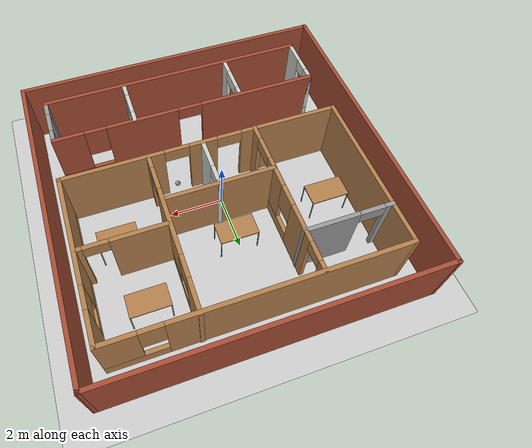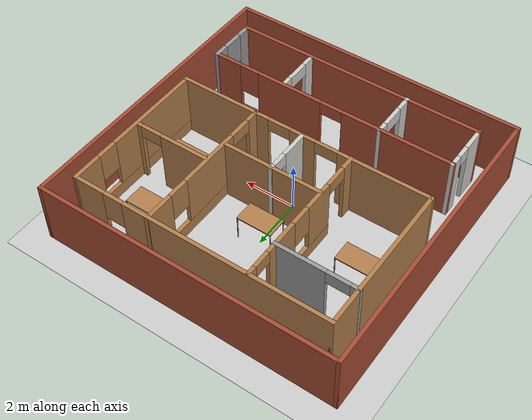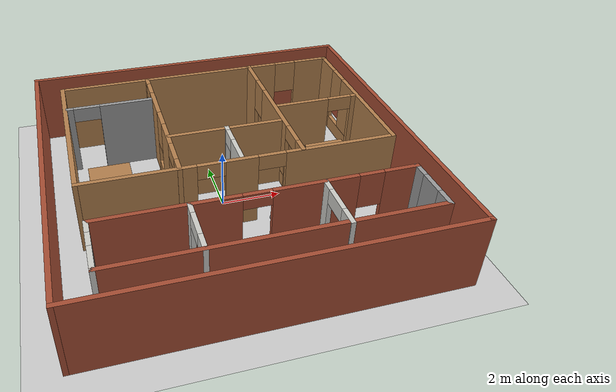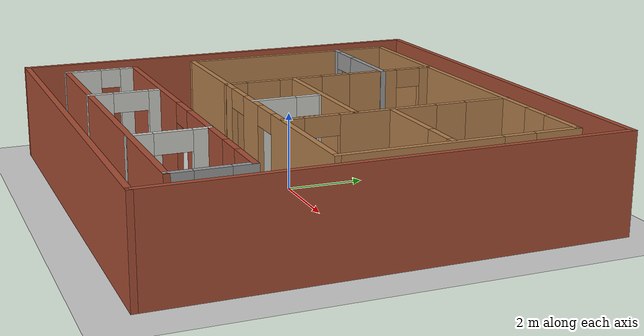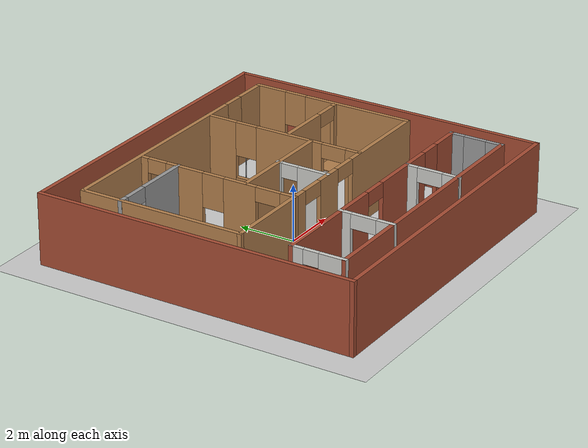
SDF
<sdf version="1.6">
 <world name="default">
  <plugin name="WelcomeMessage" filename="libWelcomeMessage.so"/>
  <light name="sun" type="directional">
   <pose>0 0 10 0 -0 0</pose>
   <diffuse>0.8 0.8 0.8 1</diffuse>
   <specular>0.1 0.1 0.1 1</specular>
   <attenuation>
    <range>1000</range>
    <constant>0.9</constant>
    <linear>0.01</linear>
    <quadratic>0.001</quadratic>
   </attenuation>
   <direction>-0.5 0.5 -1</direction>
  </light>
  <model name="ground_plane">
   <static>1</static>
   <link name="link">
    <collision name="collision">
     <geometry><plane><normal>0 0 1</normal><size>100 100</size></plane></geometry>
     <surface><friction><ode><mu>100</mu><mu2>50</mu2></ode></friction></surface>
    </collision>
    <visual name="visual">
     <cast_shadows>0</cast_shadows>
     <geometry><plane><normal>0 0 1</normal><size>100 100</size></plane></geometry>
     <material>
      <script><uri>file://media/materials/scripts/gazebo.material</uri><name>Gazebo/Grey</name></script>
     </material>
    </visual>
   </link>
  </model>
  <gravity>0 0 -9.8</gravity>
  <magnetic_field>6e-06 2.3e-05 -4.2e-05</magnetic_field>
  <atmosphere type="adiabatic"/>
  <physics name="default_physics" default="0" type="ode">
   <max_step_size>0.001</max_step_size>
   <real_time_factor>1</real_time_factor>
   <real_time_update_rate>1000</real_time_update_rate>
  </physics>
  <scene><ambient>0.4 0.4 0.4 1</ambient><background>0.7 0.7 0.7 1</background><shadows>1</shadows></scene>
  <spherical_coordinates>
   <surface_model>EARTH_WGS84</surface_model>
   <latitude_deg>0</latitude_deg>
   <longitude_deg>0</longitude_deg>
   <elevation>0</elevation>
   <heading_deg>0</heading_deg>
  </spherical_coordinates>
  <model name="Building">
   <pose>0.229511 0.12324 0 0 -0 0</pose>
   <link name="Wall_0">
    <collision name="Wall_0_Collision">
     <geometry><box><size>11.75 0.15 2.5</size></box></geometry>
     <pose>0 0 1.25 0 -0 0</pose>
    </collision>
    <visual name="Wall_0_Visual">
     <pose>0 0 1.25 0 -0 0</pose>
     <geometry><box><size>11.75 0.15 2.5</size></box></geometry>
     <material>
      <script><uri>file://media/materials/scripts/gazebo.material</uri><name>Gazebo/Bricks</name></script>
      <ambient>1 1 1 1</ambient>
     </material>
    </visual>
    <pose>0 5.675 0 0 -0 0</pose>
   </link>
   <link name="Wall_1">
    <collision name="Wall_1_Collision">
     <geometry><box><size>11.5 0.15 2.5</size></box></geometry>
     <pose>0 0 1.25 0 -0 0</pose>
    </collision>
    <visual name="Wall_1_Visual">
     <pose>0 0 1.25 0 -0 0</pose>
     <geometry><box><size>11.5 0.15 2.5</size></box></geometry>
     <material>
      <script><uri>file://media/materials/scripts/gazebo.material</uri><name>Gazebo/Bricks</name></script>
      <ambient>1 1 1 1</ambient>
     </material>
    </visual>
    <pose>5.8 0 0 0 0 -1.5708</pose>
   </link>
   <link name="Wall_10">
    <pose>-1.84004 1.73225 0 0 0 -1.5708</pose>
    <visual name="Wall_10_Visual_0">
     <pose>-2.79882 0 1.25 0 -0 0</pose>
     <geometry><box><size>0.402365 0.15 2.5</size></box></geometry>
     <material>
      <script><uri>file://media/materials/scripts/gazebo.material</uri><name>Gazebo/Wood</name></script>
      <ambient>1 1 1 1</ambient>
     </material>
    </visual>
    <collision name="Wall_10_Collision_0">
     <geometry><box><size>0.402365 0.15 2.5</size></box></geometry>
     <pose>-2.79882 0 1.25 0 -0 0</pose>
    </collision>
    <visual name="Wall_10_Visual_1">
     <pose>-1.20319 0 1.25 0 -0 0</pose>
     <geometry><box><size>1.40523 0.15 2.5</size></box></geometry>
     <material>
      <script><uri>file://media/materials/scripts/gazebo.material</uri><name>Gazebo/Wood</name></script>
      <ambient>1 1 1 1</ambient>
     </material>
    </visual>
    <collision name="Wall_10_Collision_1">
     <geometry><box><size>1.40523 0.15 2.5</size></box></geometry>
     <pose>-1.20319 0 1.25 0 -0 0</pose>
    </collision>
    <visual name="Wall_10_Visual_2">
     <pose>2.70402 0 1.25 0 -0 0</pose>
     <geometry><box><size>0.591953 0.15 2.5</size></box></geometry>
     <material>
      <script><uri>file://media/materials/scripts/gazebo.material</uri><name>Gazebo/Wood</name></script>
      <ambient>1 1 1 1</ambient>
     </material>
    </visual>
    <collision name="Wall_10_Collision_2">
     <geometry><box><size>0.591953 0.15 2.5</size></box></geometry>
     <pose>2.70402 0 1.25 0 -0 0</pose>
    </collision>
    <visual name="Wall_10_Visual_3">
     <pose>0.503735 0 0.25 0 -0 0</pose>
     <geometry><box><size>2.00862 0.15 0.5</size></box></geometry>
     <material>
      <script><uri>file://media/materials/scripts/gazebo.material</uri><name>Gazebo/Wood</name></script>
      <ambient>1 1 1 1</ambient>
     </material>
    </visual>
    <collision name="Wall_10_Collision_3">
     <geometry><box><size>2.00862 0.15 0.5</size></box></geometry>
     <pose>0.503735 0 0.25 0 -0 0</pose>
    </collision>
    <visual name="Wall_10_Visual_4">
     <pose>0.903735 0 1.5 0 -0 0</pose>
     <geometry><box><size>1.20862 0.15 2</size></box></geometry>
     <material>
      <script><uri>file://media/materials/scripts/gazebo.material</uri><name>Gazebo/Wood</name></script>
      <ambient>1 1 1 1</ambient>
     </material>
    </visual>
    <collision name="Wall_10_Collision_4">
     <geometry><box><size>1.20862 0.15 2</size></box></geometry>
     <pose>0.903735 0 1.5 0 -0 0</pose>
    </collision>
    <visual name="Wall_10_Visual_5">
     <pose>-0.100577 0 1.9 0 -0 0</pose>
     <geometry><box><size>0.8 0.15 1.2</size></box></geometry>
     <material>
      <script><uri>file://media/materials/scripts/gazebo.material</uri><name>Gazebo/Wood</name></script>
      <ambient>1 1 1 1</ambient>
     </material>
    </visual>
    <collision name="Wall_10_Collision_5">
     <geometry><box><size>0.8 0.15 1.2</size></box></geometry>
     <pose>-0.100577 0 1.9 0 -0 0</pose>
    </collision>
    <visual name="Wall_10_Visual_6">
     <pose>-2.25172 0 2.25 0 -0 0</pose>
     <geometry><box><size>0.691825 0.15 0.5</size></box></geometry>
     <material>
      <script><uri>file://media/materials/scripts/gazebo.material</uri><name>Gazebo/Wood</name></script>
      <ambient>1 1 1 1</ambient>
     </material>
    </visual>
    <collision name="Wall_10_Collision_6">
     <geometry><box><size>0.691825 0.15 0.5</size></box></geometry>
     <pose>-2.25172 0 2.25 0 -0 0</pose>
    </collision>
    <visual name="Wall_10_Visual_7">
     <pose>1.95805 0 2.25 0 -0 0</pose>
     <geometry><box><size>0.9 0.15 0.5</size></box></geometry>
     <material>
      <script><uri>file://media/materials/scripts/gazebo.material</uri><name>Gazebo/Wood</name></script>
      <ambient>1 1 1 1</ambient>
     </material>
    </visual>
    <collision name="Wall_10_Collision_7">
     <geometry><box><size>0.9 0.15 0.5</size></box></geometry>
     <pose>1.95805 0 2.25 0 -0 0</pose>
    </collision>
   </link>
   <link name="Wall_12">
    <pose>2.10026 1.76579 0 0 0 -1.5708</pose>
    <visual name="Wall_12_Visual_0">
     <pose>-2.39274 0 1.25 0 -0 0</pose>
     <geometry><box><size>1.21452 0.15 2.5</size></box></geometry>
     <material>
      <script><uri>file://media/materials/scripts/gazebo.material</uri><name>Gazebo/Wood</name></script>
      <ambient>1 1 1 1</ambient>
     </material>
    </visual>
    <collision name="Wall_12_Collision_0">
     <geometry><box><size>1.21452 0.15 2.5</size></box></geometry>
     <pose>-2.39274 0 1.25 0 -0 0</pose>
    </collision>
    <visual name="Wall_12_Visual_1">
     <pose>2.72079 0 1.25 0 -0 0</pose>
     <geometry><box><size>0.558413 0.15 2.5</size></box></geometry>
     <material>
      <script><uri>file://media/materials/scripts/gazebo.material</uri><name>Gazebo/Wood</name></script>
      <ambient>1 1 1 1</ambient>
     </material>
    </visual>
    <collision name="Wall_12_Collision_1">
     <geometry><box><size>0.558413 0.15 2.5</size></box></geometry>
     <pose>2.72079 0 1.25 0 -0 0</pose>
    </collision>
    <visual name="Wall_12_Visual_2">
     <pose>-0.121948 0 0.25 0 -0 0</pose>
     <geometry><box><size>3.32707 0.15 0.5</size></box></geometry>
     <material>
      <script><uri>file://media/materials/scripts/gazebo.material</uri><name>Gazebo/Wood</name></script>
      <ambient>1 1 1 1</ambient>
     </material>
    </visual>
    <collision name="Wall_12_Collision_2">
     <geometry><box><size>3.32707 0.15 0.5</size></box></geometry>
     <pose>-0.121948 0 0.25 0 -0 0</pose>
    </collision>
    <visual name="Wall_12_Visual_3">
     <pose>0.278052 0 1.5 0 -0 0</pose>
     <geometry><box><size>2.52707 0.15 2</size></box></geometry>
     <material>
      <script><uri>file://media/materials/scripts/gazebo.material</uri><name>Gazebo/Wood</name></script>
      <ambient>1 1 1 1</ambient>
     </material>
    </visual>
    <collision name="Wall_12_Collision_3">
     <geometry><box><size>2.52707 0.15 2</size></box></geometry>
     <pose>0.278052 0 1.5 0 -0 0</pose>
    </collision>
    <visual name="Wall_12_Visual_4">
     <pose>-1.38548 0 1.9 0 -0 0</pose>
     <geometry><box><size>0.8 0.15 1.2</size></box></geometry>
     <material>
      <script><uri>file://media/materials/scripts/gazebo.material</uri><name>Gazebo/Wood</name></script>
      <ambient>1 1 1 1</ambient>
     </material>
    </visual>
    <collision name="Wall_12_Collision_4">
     <geometry><box><size>0.8 0.15 1.2</size></box></geometry>
     <pose>-1.38548 0 1.9 0 -0 0</pose>
    </collision>
    <visual name="Wall_12_Visual_5">
     <pose>1.99159 0 2.25 0 -0 0</pose>
     <geometry><box><size>0.9 0.15 0.5</size></box></geometry>
     <material>
      <script><uri>file://media/materials/scripts/gazebo.material</uri><name>Gazebo/Wood</name></script>
      <ambient>1 1 1 1</ambient>
     </material>
    </visual>
    <collision name="Wall_12_Collision_5">
     <geometry><box><size>0.9 0.15 0.5</size></box></geometry>
     <pose>1.99159 0 2.25 0 -0 0</pose>
    </collision>
   </link>
   <link name="Wall_14">
    <pose>-3.37566 3.22084 0 0 -0 0</pose>
    <visual name="Wall_14_Visual_0">
     <pose>-1.44701 0 1.25 0 -0 0</pose>
     <geometry><box><size>0.355984 0.15 2.5</size></box></geometry>
     <material>
      <script><uri>file://media/materials/scripts/gazebo.material</uri><name>Gazebo/Grey</name></script>
      <ambient>1 1 1 1</ambient>
     </material>
    </visual>
    <collision name="Wall_14_Collision_0">
     <geometry><box><size>0.355984 0.15 2.5</size></box></geometry>
     <pose>-1.44701 0 1.25 0 -0 0</pose>
    </collision>
    <visual name="Wall_14_Visual_1">
     <pose>0.627992 0 1.25 0 -0 0</pose>
     <geometry><box><size>1.99402 0.15 2.5</size></box></geometry>
     <material>
      <script><uri>file://media/materials/scripts/gazebo.material</uri><name>Gazebo/Grey</name></script>
      <ambient>1 1 1 1</ambient>
     </material>
    </visual>
    <collision name="Wall_14_Collision_1">
     <geometry><box><size>1.99402 0.15 2.5</size></box></geometry>
     <pose>0.627992 0 1.25 0 -0 0</pose>
    </collision>
    <visual name="Wall_14_Visual_2">
     <pose>-0.819016 0 2.25 0 -0 0</pose>
     <geometry><box><size>0.9 0.15 0.5</size></box></geometry>
     <material>
      <script><uri>file://media/materials/scripts/gazebo.material</uri><name>Gazebo/Grey</name></script>
      <ambient>1 1 1 1</ambient>
     </material>
    </visual>
    <collision name="Wall_14_Collision_2">
     <geometry><box><size>0.9 0.15 0.5</size></box></geometry>
     <pose>-0.819016 0 2.25 0 -0 0</pose>
    </collision>
   </link>
   <link name="Wall_16">
    <pose>3.63166 1.57857 0 0 -0 0</pose>
    <visual name="Wall_16_Visual_0">
     <pose>-0.52805 0 1.25 0 -0 0</pose>
     <geometry><box><size>1.9439 0.15 2.5</size></box></geometry>
     <material>
      <script><uri>file://media/materials/scripts/gazebo.material</uri><name>Gazebo/Wood</name></script>
      <ambient>1 1 1 1</ambient>
     </material>
    </visual>
    <collision name="Wall_16_Collision_0">
     <geometry><box><size>1.9439 0.15 2.5</size></box></geometry>
     <pose>-0.52805 0 1.25 0 -0 0</pose>
    </collision>
    <visual name="Wall_16_Visual_1">
     <pose>1.39882 0 1.25 0 -0 0</pose>
     <geometry><box><size>0.202362 0.15 2.5</size></box></geometry>
     <material>
      <script><uri>file://media/materials/scripts/gazebo.material</uri><name>Gazebo/Wood</name></script>
      <ambient>1 1 1 1</ambient>
     </material>
    </visual>
    <collision name="Wall_16_Collision_1">
     <geometry><box><size>0.202362 0.15 2.5</size></box></geometry>
     <pose>1.39882 0 1.25 0 -0 0</pose>
    </collision>
    <visual name="Wall_16_Visual_2">
     <pose>0.870769 0 2.25 0 -0 0</pose>
     <geometry><box><size>0.853739 0.15 0.5</size></box></geometry>
     <material>
      <script><uri>file://media/materials/scripts/gazebo.material</uri><name>Gazebo/Wood</name></script>
      <ambient>1 1 1 1</ambient>
     </material>
    </visual>
    <collision name="Wall_16_Collision_2">
     <geometry><box><size>0.853739 0.15 0.5</size></box></geometry>
     <pose>0.870769 0 2.25 0 -0 0</pose>
    </collision>
   </link>
   <link name="Wall_18">
    <collision name="Wall_18_Collision">
     <geometry><box><size>4 0.15 2.5</size></box></geometry>
     <pose>0 0 1.25 0 -0 0</pose>
    </collision>
    <visual name="Wall_18_Visual">
     <pose>0 0 1.25 0 -0 0</pose>
     <geometry><box><size>4 0.15 2.5</size></box></geometry>
     <material>
      <script><uri>file://media/materials/scripts/gazebo.material</uri><name>Gazebo/Wood</name></script>
      <ambient>1 1 1 1</ambient>
     </material>
    </visual>
    <pose>0.11503 0.647562 0 0 -0 0</pose>
   </link>
   <link name="Wall_2">
    <collision name="Wall_2_Collision">
     <geometry><box><size>11.75 0.15 2.5</size></box></geometry>
     <pose>0 0 1.25 0 -0 0</pose>
    </collision>
    <visual name="Wall_2_Visual">
     <pose>0 0 1.25 0 -0 0</pose>
     <geometry><box><size>11.75 0.15 2.5</size></box></geometry>
     <material>
      <script><uri>file://media/materials/scripts/gazebo.material</uri><name>Gazebo/Bricks</name></script>
      <ambient>1 1 1 1</ambient>
     </material>
    </visual>
    <pose>0 -5.675 0 0 -0 3.14159</pose>
   </link>
   <link name="Wall_20">
    <pose>0.128375 -0.257777 0 0 0 -1.5708</pose>
    <visual name="Wall_20_Visual_0">
     <pose>-0.885558 0 1.25 0 -0 0</pose>
     <geometry><box><size>0.228885 0.15 2.5</size></box></geometry>
     <material>
      <script><uri>file://media/materials/scripts/gazebo.material</uri><name>Gazebo/CeilingTiled</name></script>
      <ambient>1 1 1 1</ambient>
     </material>
    </visual>
    <collision name="Wall_20_Collision_0">
     <geometry><box><size>0.228885 0.15 2.5</size></box></geometry>
     <pose>-0.885558 0 1.25 0 -0 0</pose>
    </collision>
    <visual name="Wall_20_Visual_1">
     <pose>0.414094 0 1.25 0 -0 0</pose>
     <geometry><box><size>1.17181 0.15 2.5</size></box></geometry>
     <material>
      <script><uri>file://media/materials/scripts/gazebo.material</uri><name>Gazebo/CeilingTiled</name></script>
      <ambient>1 1 1 1</ambient>
     </material>
    </visual>
    <collision name="Wall_20_Collision_1">
     <geometry><box><size>1.17181 0.15 2.5</size></box></geometry>
     <pose>0.414094 0 1.25 0 -0 0</pose>
    </collision>
    <visual name="Wall_20_Visual_2">
     <pose>-0.471464 0 2.25 0 -0 0</pose>
     <geometry><box><size>0.599302 0.15 0.5</size></box></geometry>
     <material>
      <script><uri>file://media/materials/scripts/gazebo.material</uri><name>Gazebo/CeilingTiled</name></script>
      <ambient>1 1 1 1</ambient>
     </material>
    </visual>
    <collision name="Wall_20_Collision_2">
     <geometry><box><size>0.599302 0.15 0.5</size></box></geometry>
     <pose>-0.471464 0 2.25 0 -0 0</pose>
    </collision>
   </link>
   <link name="Wall_22">
    <pose>0.162408 -2.91686 0 0 -0 0</pose>
    <visual name="Wall_22_Visual_0">
     <pose>-2.77553 0 1.25 0 -0 0</pose>
     <geometry><box><size>4.44895 0.15 2.5</size></box></geometry>
     <material>
      <script><uri>file://media/materials/scripts/gazebo.material</uri><name>Gazebo/Bricks</name></script>
      <ambient>1 1 1 1</ambient>
     </material>
    </visual>
    <collision name="Wall_22_Collision_0">
     <geometry><box><size>4.44895 0.15 2.5</size></box></geometry>
     <pose>-2.77553 0 1.25 0 -0 0</pose>
    </collision>
    <visual name="Wall_22_Visual_1">
     <pose>1.69344 0 1.25 0 -0 0</pose>
     <geometry><box><size>2.68898 0.15 2.5</size></box></geometry>
     <material>
      <script><uri>file://media/materials/scripts/gazebo.material</uri><name>Gazebo/Bricks</name></script>
      <ambient>1 1 1 1</ambient>
     </material>
    </visual>
    <collision name="Wall_22_Collision_1">
     <geometry><box><size>2.68898 0.15 2.5</size></box></geometry>
     <pose>1.69344 0 1.25 0 -0 0</pose>
    </collision>
    <visual name="Wall_22_Visual_2">
     <pose>4.01896 0 0.25 0 -0 0</pose>
     <geometry><box><size>1.96207 0.15 0.5</size></box></geometry>
     <material>
      <script><uri>file://media/materials/scripts/gazebo.material</uri><name>Gazebo/Bricks</name></script>
      <ambient>1 1 1 1</ambient>
     </material>
    </visual>
    <collision name="Wall_22_Collision_2">
     <geometry><box><size>1.96207 0.15 0.5</size></box></geometry>
     <pose>4.01896 0 0.25 0 -0 0</pose>
    </collision>
    <visual name="Wall_22_Visual_3">
     <pose>4.41896 0 1.5 0 -0 0</pose>
     <geometry><box><size>1.16207 0.15 2</size></box></geometry>
     <material>
      <script><uri>file://media/materials/scripts/gazebo.material</uri><name>Gazebo/Bricks</name></script>
      <ambient>1 1 1 1</ambient>
     </material>
    </visual>
    <collision name="Wall_22_Collision_3">
     <geometry><box><size>1.16207 0.15 2</size></box></geometry>
     <pose>4.41896 0 1.5 0 -0 0</pose>
    </collision>
    <visual name="Wall_22_Visual_4">
     <pose>3.43793 0 1.9 0 -0 0</pose>
     <geometry><box><size>0.8 0.15 1.2</size></box></geometry>
     <material>
      <script><uri>file://media/materials/scripts/gazebo.material</uri><name>Gazebo/Bricks</name></script>
      <ambient>1 1 1 1</ambient>
     </material>
    </visual>
    <collision name="Wall_22_Collision_4">
     <geometry><box><size>0.8 0.15 1.2</size></box></geometry>
     <pose>3.43793 0 1.9 0 -0 0</pose>
    </collision>
    <visual name="Wall_22_Visual_5">
     <pose>-0.101055 0 2.25 0 -0 0</pose>
     <geometry><box><size>0.9 0.15 0.5</size></box></geometry>
     <material>
      <script><uri>file://media/materials/scripts/gazebo.material</uri><name>Gazebo/Bricks</name></script>
      <ambient>1 1 1 1</ambient>
     </material>
    </visual>
    <collision name="Wall_22_Collision_5">
     <geometry><box><size>0.9 0.15 0.5</size></box></geometry>
     <pose>-0.101055 0 2.25 0 -0 0</pose>
    </collision>
   </link>
   <link name="Wall_23">
    <pose>5.08741 -3.84186 0 0 0 -1.5708</pose>
    <visual name="Wall_23_Visual_0">
     <pose>-0.715413 0 1.25 0 -0 0</pose>
     <geometry><box><size>0.569174 0.15 2.5</size></box></geometry>
     <material>
      <script><uri>file://media/materials/scripts/gazebo.material</uri><name>Gazebo/Grey</name></script>
      <ambient>1 1 1 1</ambient>
     </material>
    </visual>
    <collision name="Wall_23_Collision_0">
     <geometry><box><size>0.569174 0.15 2.5</size></box></geometry>
     <pose>-0.715413 0 1.25 0 -0 0</pose>
    </collision>
    <visual name="Wall_23_Visual_1">
     <pose>0.284587 0 0.25 0 -0 0</pose>
     <geometry><box><size>1.43083 0.15 0.5</size></box></geometry>
     <material>
      <script><uri>file://media/materials/scripts/gazebo.material</uri><name>Gazebo/Grey</name></script>
      <ambient>1 1 1 1</ambient>
     </material>
    </visual>
    <collision name="Wall_23_Collision_1">
     <geometry><box><size>1.43083 0.15 0.5</size></box></geometry>
     <pose>0.284587 0 0.25 0 -0 0</pose>
    </collision>
    <visual name="Wall_23_Visual_2">
     <pose>0.684587 0 1.5 0 -0 0</pose>
     <geometry><box><size>0.630826 0.15 2</size></box></geometry>
     <material>
      <script><uri>file://media/materials/scripts/gazebo.material</uri><name>Gazebo/Grey</name></script>
      <ambient>1 1 1 1</ambient>
     </material>
    </visual>
    <collision name="Wall_23_Collision_2">
     <geometry><box><size>0.630826 0.15 2</size></box></geometry>
     <pose>0.684587 0 1.5 0 -0 0</pose>
    </collision>
    <visual name="Wall_23_Visual_3">
     <pose>-0.030826 0 1.9 0 -0 0</pose>
     <geometry><box><size>0.8 0.15 1.2</size></box></geometry>
     <material>
      <script><uri>file://media/materials/scripts/gazebo.material</uri><name>Gazebo/Grey</name></script>
      <ambient>1 1 1 1</ambient>
     </material>
    </visual>
    <collision name="Wall_23_Collision_3">
     <geometry><box><size>0.8 0.15 1.2</size></box></geometry>
     <pose>-0.030826 0 1.9 0 -0 0</pose>
    </collision>
   </link>
   <link name="Wall_24">
    <collision name="Wall_24_Collision">
     <geometry><box><size>10 0.15 2.5</size></box></geometry>
     <pose>0 0 1.25 0 -0 0</pose>
    </collision>
    <visual name="Wall_24_Visual">
     <pose>0 0 1.25 0 -0 0</pose>
     <geometry><box><size>10 0.15 2.5</size></box></geometry>
     <material>
      <script><uri>file://media/materials/scripts/gazebo.material</uri><name>Gazebo/Bricks</name></script>
      <ambient>1 1 1 1</ambient>
     </material>
    </visual>
    <pose>0.162408 -4.76686 0 0 -0 3.14159</pose>
   </link>
   <link name="Wall_25">
    <pose>-4.76259 -3.84186 0 0 -0 1.5708</pose>
    <visual name="Wall_25_Visual_0">
     <pose>-0.51876 0 1.25 0 -0 0</pose>
     <geometry><box><size>0.962481 0.15 2.5</size></box></geometry>
     <material>
      <script><uri>file://media/materials/scripts/gazebo.material</uri><name>Gazebo/CeilingTiled</name></script>
      <ambient>1 1 1 1</ambient>
     </material>
    </visual>
    <collision name="Wall_25_Collision_0">
     <geometry><box><size>0.962481 0.15 2.5</size></box></geometry>
     <pose>-0.51876 0 1.25 0 -0 0</pose>
    </collision>
    <visual name="Wall_25_Visual_1">
     <pose>0.746196 0 1.25 0 -0 0</pose>
     <geometry><box><size>0.507609 0.15 2.5</size></box></geometry>
     <material>
      <script><uri>file://media/materials/scripts/gazebo.material</uri><name>Gazebo/CeilingTiled</name></script>
      <ambient>1 1 1 1</ambient>
     </material>
    </visual>
    <collision name="Wall_25_Collision_1">
     <geometry><box><size>0.507609 0.15 2.5</size></box></geometry>
     <pose>0.746196 0 1.25 0 -0 0</pose>
    </collision>
    <visual name="Wall_25_Visual_2">
     <pose>0.227436 0 2.25 0 -0 0</pose>
     <geometry><box><size>0.52991 0.15 0.5</size></box></geometry>
     <material>
      <script><uri>file://media/materials/scripts/gazebo.material</uri><name>Gazebo/CeilingTiled</name></script>
      <ambient>1 1 1 1</ambient>
     </material>
    </visual>
    <collision name="Wall_25_Collision_2">
     <geometry><box><size>0.52991 0.15 0.5</size></box></geometry>
     <pose>0.227436 0 2.25 0 -0 0</pose>
    </collision>
   </link>
   <link name="Wall_27">
    <pose>-1.91637 -3.84186 0 0 0 -1.5708</pose>
    <visual name="Wall_27_Visual_0">
     <pose>-0.775109 0 1.25 0 -0 0</pose>
     <geometry><box><size>0.449782 0.15 2.5</size></box></geometry>
     <material>
      <script><uri>file://media/materials/scripts/gazebo.material</uri><name>Gazebo/CeilingTiled</name></script>
      <ambient>1 1 1 1</ambient>
     </material>
    </visual>
    <collision name="Wall_27_Collision_0">
     <geometry><box><size>0.449782 0.15 2.5</size></box></geometry>
     <pose>-0.775109 0 1.25 0 -0 0</pose>
    </collision>
    <visual name="Wall_27_Visual_1">
     <pose>0.674891 0 1.25 0 -0 0</pose>
     <geometry><box><size>0.650218 0.15 2.5</size></box></geometry>
     <material>
      <script><uri>file://media/materials/scripts/gazebo.material</uri><name>Gazebo/CeilingTiled</name></script>
      <ambient>1 1 1 1</ambient>
     </material>
    </visual>
    <collision name="Wall_27_Collision_1">
     <geometry><box><size>0.650218 0.15 2.5</size></box></geometry>
     <pose>0.674891 0 1.25 0 -0 0</pose>
    </collision>
    <visual name="Wall_27_Visual_2">
     <pose>-0.100218 0 2.25 0 -0 0</pose>
     <geometry><box><size>0.9 0.15 0.5</size></box></geometry>
     <material>
      <script><uri>file://media/materials/scripts/gazebo.material</uri><name>Gazebo/CeilingTiled</name></script>
      <ambient>1 1 1 1</ambient>
     </material>
    </visual>
    <collision name="Wall_27_Collision_2">
     <geometry><box><size>0.9 0.15 0.5</size></box></geometry>
     <pose>-0.100218 0 2.25 0 -0 0</pose>
    </collision>
   </link>
   <link name="Wall_29">
    <pose>2.13033 -3.86152 0 0 0 -1.5708</pose>
    <visual name="Wall_29_Visual_0">
     <pose>-0.761809 0 1.25 0 -0 0</pose>
     <geometry><box><size>0.476383 0.15 2.5</size></box></geometry>
     <material>
      <script><uri>file://media/materials/scripts/gazebo.material</uri><name>Gazebo/CeilingTiled</name></script>
      <ambient>1 1 1 1</ambient>
     </material>
    </visual>
    <collision name="Wall_29_Collision_0">
     <geometry><box><size>0.476383 0.15 2.5</size></box></geometry>
     <pose>-0.761809 0 1.25 0 -0 0</pose>
    </collision>
    <visual name="Wall_29_Visual_1">
     <pose>0.688191 0 1.25 0 -0 0</pose>
     <geometry><box><size>0.623617 0.15 2.5</size></box></geometry>
     <material>
      <script><uri>file://media/materials/scripts/gazebo.material</uri><name>Gazebo/CeilingTiled</name></script>
      <ambient>1 1 1 1</ambient>
     </material>
    </visual>
    <collision name="Wall_29_Collision_1">
     <geometry><box><size>0.623617 0.15 2.5</size></box></geometry>
     <pose>0.688191 0 1.25 0 -0 0</pose>
    </collision>
    <visual name="Wall_29_Visual_2">
     <pose>-0.073617 0 2.25 0 -0 0</pose>
     <geometry><box><size>0.9 0.15 0.5</size></box></geometry>
     <material>
      <script><uri>file://media/materials/scripts/gazebo.material</uri><name>Gazebo/CeilingTiled</name></script>
      <ambient>1 1 1 1</ambient>
     </material>
    </visual>
    <collision name="Wall_29_Collision_2">
     <geometry><box><size>0.9 0.15 0.5</size></box></geometry>
     <pose>-0.073617 0 2.25 0 -0 0</pose>
    </collision>
   </link>
   <link name="Wall_3">
    <collision name="Wall_3_Collision">
     <geometry><box><size>11.5 0.15 2.5</size></box></geometry>
     <pose>0 0 1.25 0 -0 0</pose>
    </collision>
    <visual name="Wall_3_Visual">
     <pose>0 0 1.25 0 -0 0</pose>
     <geometry><box><size>11.5 0.15 2.5</size></box></geometry>
     <material>
      <script><uri>file://media/materials/scripts/gazebo.material</uri><name>Gazebo/Bricks</name></script>
      <ambient>1 1 1 1</ambient>
     </material>
    </visual>
    <pose>-5.8 0 0 0 -0 1.5708</pose>
   </link>
   <link name="Wall_5">
    <pose>0.127806 4.66419 0 0 -0 0</pose>
    <visual name="Wall_5_Visual_0">
     <pose>-1.04937 0 1.25 0 -0 0</pose>
     <geometry><box><size>8.15127 0.15 2.5</size></box></geometry>
     <material>
      <script><uri>file://media/materials/scripts/gazebo.material</uri><name>Gazebo/Wood</name></script>
      <ambient>1 1 1 1</ambient>
     </material>
    </visual>
    <collision name="Wall_5_Collision_0">
     <geometry><box><size>8.15127 0.15 2.5</size></box></geometry>
     <pose>-1.04937 0 1.25 0 -0 0</pose>
    </collision>
    <visual name="Wall_5_Visual_1">
     <pose>4.07563 0 0.25 0 -0 0</pose>
     <geometry><box><size>2.09873 0.15 0.5</size></box></geometry>
     <material>
      <script><uri>file://media/materials/scripts/gazebo.material</uri><name>Gazebo/Wood</name></script>
      <ambient>1 1 1 1</ambient>
     </material>
    </visual>
    <collision name="Wall_5_Collision_1">
     <geometry><box><size>2.09873 0.15 0.5</size></box></geometry>
     <pose>4.07563 0 0.25 0 -0 0</pose>
    </collision>
    <visual name="Wall_5_Visual_2">
     <pose>4.47563 0 1.5 0 -0 0</pose>
     <geometry><box><size>1.29873 0.15 2</size></box></geometry>
     <material>
      <script><uri>file://media/materials/scripts/gazebo.material</uri><name>Gazebo/Wood</name></script>
      <ambient>1 1 1 1</ambient>
     </material>
    </visual>
    <collision name="Wall_5_Collision_2">
     <geometry><box><size>1.29873 0.15 2</size></box></geometry>
     <pose>4.47563 0 1.5 0 -0 0</pose>
    </collision>
    <visual name="Wall_5_Visual_3">
     <pose>3.42627 0 1.9 0 -0 0</pose>
     <geometry><box><size>0.8 0.15 1.2</size></box></geometry>
     <material>
      <script><uri>file://media/materials/scripts/gazebo.material</uri><name>Gazebo/Wood</name></script>
      <ambient>1 1 1 1</ambient>
     </material>
    </visual>
    <collision name="Wall_5_Collision_3">
     <geometry><box><size>0.8 0.15 1.2</size></box></geometry>
     <pose>3.42627 0 1.9 0 -0 0</pose>
    </collision>
   </link>
   <link name="Wall_6">
    <pose>5.17781 1.73919 0 0 0 -1.5708</pose>
    <visual name="Wall_6_Visual_0">
     <pose>-2.40604 0 1.25 0 -0 0</pose>
     <geometry><box><size>1.18792 0.15 2.5</size></box></geometry>
     <material>
      <script><uri>file://media/materials/scripts/gazebo.material</uri><name>Gazebo/Wood</name></script>
      <ambient>1 1 1 1</ambient>
     </material>
    </visual>
    <collision name="Wall_6_Collision_0">
     <geometry><box><size>1.18792 0.15 2.5</size></box></geometry>
     <pose>-2.40604 0 1.25 0 -0 0</pose>
    </collision>
    <visual name="Wall_6_Visual_1">
     <pose>0.593959 0 0.25 0 -0 0</pose>
     <geometry><box><size>4.81208 0.15 0.5</size></box></geometry>
     <material>
      <script><uri>file://media/materials/scripts/gazebo.material</uri><name>Gazebo/Wood</name></script>
      <ambient>1 1 1 1</ambient>
     </material>
    </visual>
    <collision name="Wall_6_Collision_1">
     <geometry><box><size>4.81208 0.15 0.5</size></box></geometry>
     <pose>0.593959 0 0.25 0 -0 0</pose>
    </collision>
    <visual name="Wall_6_Visual_2">
     <pose>0.993959 0 1.5 0 -0 0</pose>
     <geometry><box><size>4.01208 0.15 2</size></box></geometry>
     <material>
      <script><uri>file://media/materials/scripts/gazebo.material</uri><name>Gazebo/Wood</name></script>
      <ambient>1 1 1 1</ambient>
     </material>
    </visual>
    <collision name="Wall_6_Collision_2">
     <geometry><box><size>4.01208 0.15 2</size></box></geometry>
     <pose>0.993959 0 1.5 0 -0 0</pose>
    </collision>
    <visual name="Wall_6_Visual_3">
     <pose>-1.41208 0 1.9 0 -0 0</pose>
     <geometry><box><size>0.8 0.15 1.2</size></box></geometry>
     <material>
      <script><uri>file://media/materials/scripts/gazebo.material</uri><name>Gazebo/Wood</name></script>
      <ambient>1 1 1 1</ambient>
     </material>
    </visual>
    <collision name="Wall_6_Collision_3">
     <geometry><box><size>0.8 0.15 1.2</size></box></geometry>
     <pose>-1.41208 0 1.9 0 -0 0</pose>
    </collision>
   </link>
   <link name="Wall_7">
    <pose>0.127806 -1.18581 0 0 -0 3.14159</pose>
    <visual name="Wall_7_Visual_0">
     <pose>-3.26315 0 1.25 0 -0 0</pose>
     <geometry><box><size>3.72371 0.15 2.5</size></box></geometry>
     <material>
      <script><uri>file://media/materials/scripts/gazebo.material</uri><name>Gazebo/Wood</name></script>
      <ambient>1 1 1 1</ambient>
     </material>
    </visual>
    <collision name="Wall_7_Collision_0">
     <geometry><box><size>3.72371 0.15 2.5</size></box></geometry>
     <pose>-3.26315 0 1.25 0 -0 0</pose>
    </collision>
    <visual name="Wall_7_Visual_1">
     <pose>0.020193 0 1.25 0 -0 0</pose>
     <geometry><box><size>1.04297 0.15 2.5</size></box></geometry>
     <material>
      <script><uri>file://media/materials/scripts/gazebo.material</uri><name>Gazebo/Wood</name></script>
      <ambient>1 1 1 1</ambient>
     </material>
    </visual>
    <collision name="Wall_7_Collision_1">
     <geometry><box><size>1.04297 0.15 2.5</size></box></geometry>
     <pose>0.020193 0 1.25 0 -0 0</pose>
    </collision>
    <visual name="Wall_7_Visual_2">
     <pose>3.28334 0 1.25 0 -0 0</pose>
     <geometry><box><size>3.68332 0.15 2.5</size></box></geometry>
     <material>
      <script><uri>file://media/materials/scripts/gazebo.material</uri><name>Gazebo/Wood</name></script>
      <ambient>1 1 1 1</ambient>
     </material>
    </visual>
    <collision name="Wall_7_Collision_2">
     <geometry><box><size>3.68332 0.15 2.5</size></box></geometry>
     <pose>3.28334 0 1.25 0 -0 0</pose>
    </collision>
    <visual name="Wall_7_Visual_3">
     <pose>-0.951293 0 2.25 0 -0 0</pose>
     <geometry><box><size>0.9 0.15 0.5</size></box></geometry>
     <material>
      <script><uri>file://media/materials/scripts/gazebo.material</uri><name>Gazebo/Wood</name></script>
      <ambient>1 1 1 1</ambient>
     </material>
    </visual>
    <collision name="Wall_7_Collision_3">
     <geometry><box><size>0.9 0.15 0.5</size></box></geometry>
     <pose>-0.951293 0 2.25 0 -0 0</pose>
    </collision>
    <visual name="Wall_7_Visual_4">
     <pose>0.991678 0 2.25 0 -0 0</pose>
     <geometry><box><size>0.9 0.15 0.5</size></box></geometry>
     <material>
      <script><uri>file://media/materials/scripts/gazebo.material</uri><name>Gazebo/Wood</name></script>
      <ambient>1 1 1 1</ambient>
     </material>
    </visual>
    <collision name="Wall_7_Collision_4">
     <geometry><box><size>0.9 0.15 0.5</size></box></geometry>
     <pose>0.991678 0 2.25 0 -0 0</pose>
    </collision>
   </link>
   <link name="Wall_8">
    <collision name="Wall_8_Collision">
     <geometry><box><size>6 0.15 2.5</size></box></geometry>
     <pose>0 0 1.25 0 -0 0</pose>
    </collision>
    <visual name="Wall_8_Visual">
     <pose>0 0 1.25 0 -0 0</pose>
     <geometry><box><size>6 0.15 2.5</size></box></geometry>
     <material>
      <script><uri>file://media/materials/scripts/gazebo.material</uri><name>Gazebo/Wood</name></script>
      <ambient>1 1 1 1</ambient>
     </material>
    </visual>
    <pose>-4.92219 1.73919 0 0 -0 1.5708</pose>
   </link>
   <static>1</static>
  </model>
  <model name="table_0">
   <static>0</static>
   <link name="link">
    <collision name="surface">
     <pose>0 0 1 0 -0 0</pose>
     <geometry><box><size>1.5 0.8 0.03</size></box></geometry>
     <surface><friction><ode><mu>0.6</mu><mu2>0.6</mu2></ode></friction></surface>
    </collision>
    <visual name="visual1">
     <pose>0 0 1 0 -0 0</pose>
     <geometry><box><size>1.4 0.8 0.04</size></box></geometry>
     <material>
      <script><uri>file://media/materials/scripts/gazebo.material</uri><name>Gazebo/Wood</name></script>
     </material>
    </visual>
    <collision name="front_left_leg">
     <pose>0.68 0.38 0.5 0 -0 0</pose>
     <geometry><cylinder><radius>0.02</radius><length>1</length></cylinder></geometry>
    </collision>
    <visual name="front_left_leg">
     <pose>0.68 0.38 0.5 0 -0 0</pose>
     <geometry><cylinder><radius>0.02</radius><length>1</length></cylinder></geometry>
     <material>
      <script><uri>file://media/materials/scripts/gazebo.material</uri><name>Gazebo/Grey</name></script>
     </material>
    </visual>
    <collision name="front_right_leg">
     <pose>0.68 -0.38 0.5 0 -0 0</pose>
     <geometry><cylinder><radius>0.02</radius><length>1</length></cylinder></geometry>
    </collision>
    <visual name="front_right_leg">
     <pose>0.68 -0.38 0.5 0 -0 0</pose>
     <geometry><cylinder><radius>0.02</radius><length>1</length></cylinder></geometry>
     <material>
      <script><uri>file://media/materials/scripts/gazebo.material</uri><name>Gazebo/Grey</name></script>
     </material>
    </visual>
    <collision name="back_right_leg">
     <pose>-0.68 -0.38 0.5 0 -0 0</pose>
     <geometry><cylinder><radius>0.02</radius><length>1</length></cylinder></geometry>
    </collision>
    <visual name="back_right_leg">
     <pose>-0.68 -0.38 0.5 0 -0 0</pose>
     <geometry><cylinder><radius>0.02</radius><length>1</length></cylinder></geometry>
     <material>
      <script><uri>file://media/materials/scripts/gazebo.material</uri><name>Gazebo/Grey</name></script>
     </material>
    </visual>
    <collision name="back_left_leg">
     <pose>-0.68 0.38 0.5 0 -0 0</pose>
     <geometry><cylinder><radius>0.02</radius><length>1</length></cylinder></geometry>
    </collision>
    <visual name="back_left_leg">
     <pose>-0.68 0.38 0.5 0 -0 0</pose>
     <geometry><cylinder><radius>0.02</radius><length>1</length></cylinder></geometry>
     <material>
      <script><uri>file://media/materials/scripts/gazebo.material</uri><name>Gazebo/Grey</name></script>
     </material>
    </visual>
    <inertial>
     <inertia><ixx>1</ixx><ixy>0</ixy><ixz>0</ixz><iyy>1</iyy><iyz>0</iyz><izz>1</izz></inertia>
     <mass>1</mass>
    </inertial>
   </link>
   <pose>3.65266 3.36463 -9e-06 0 -1e-06 0</pose>
  </model>
  <model name="table_1">
   <static>0</static>
   <link name="link">
    <collision name="surface">
     <pose>0 0 1 0 -0 0</pose>
     <geometry><box><size>1.5 0.8 0.03</size></box></geometry>
     <surface><friction><ode><mu>0.6</mu><mu2>0.6</mu2></ode></friction></surface>
    </collision>
    <visual name="visual1">
     <pose>0 0 1 0 -0 0</pose>
     <geometry><box><size>1.4 0.8 0.04</size></box></geometry>
     <material>
      <script><uri>file://media/materials/scripts/gazebo.material</uri><name>Gazebo/Wood</name></script>
     </material>
    </visual>
    <collision name="front_left_leg">
     <pose>0.68 0.38 0.5 0 -0 0</pose>
     <geometry><cylinder><radius>0.02</radius><length>1</length></cylinder></geometry>
    </collision>
    <visual name="front_left_leg">
     <pose>0.68 0.38 0.5 0 -0 0</pose>
     <geometry><cylinder><radius>0.02</radius><length>1</length></cylinder></geometry>
     <material>
      <script><uri>file://media/materials/scripts/gazebo.material</uri><name>Gazebo/Grey</name></script>
     </material>
    </visual>
    <collision name="front_right_leg">
     <pose>0.68 -0.38 0.5 0 -0 0</pose>
     <geometry><cylinder><radius>0.02</radius><length>1</length></cylinder></geometry>
    </collision>
    <visual name="front_right_leg">
     <pose>0.68 -0.38 0.5 0 -0 0</pose>
     <geometry><cylinder><radius>0.02</radius><length>1</length></cylinder></geometry>
     <material>
      <script><uri>file://media/materials/scripts/gazebo.material</uri><name>Gazebo/Grey</name></script>
     </material>
    </visual>
    <collision name="back_right_leg">
     <pose>-0.68 -0.38 0.5 0 -0 0</pose>
     <geometry><cylinder><radius>0.02</radius><length>1</length></cylinder></geometry>
    </collision>
    <visual name="back_right_leg">
     <pose>-0.68 -0.38 0.5 0 -0 0</pose>
     <geometry><cylinder><radius>0.02</radius><length>1</length></cylinder></geometry>
     <material>
      <script><uri>file://media/materials/scripts/gazebo.material</uri><name>Gazebo/Grey</name></script>
     </material>
    </visual>
    <collision name="back_left_leg">
     <pose>-0.68 0.38 0.5 0 -0 0</pose>
     <geometry><cylinder><radius>0.02</radius><length>1</length></cylinder></geometry>
    </collision>
    <visual name="back_left_leg">
     <pose>-0.68 0.38 0.5 0 -0 0</pose>
     <geometry><cylinder><radius>0.02</radius><length>1</length></cylinder></geometry>
     <material>
      <script><uri>file://media/materials/scripts/gazebo.material</uri><name>Gazebo/Grey</name></script>
     </material>
    </visual>
    <inertial>
     <inertia><ixx>1</ixx><ixy>0</ixy><ixz>0</ixz><iyy>1</iyy><iyz>0</iyz><izz>1</izz></inertia>
     <mass>1</mass>
    </inertial>
   </link>
   <pose>4.05447 0.820723 -1e-06 0 1e-06 0</pose>
  </model>
  <model name="table_2">
   <static>0</static>
   <link name="link">
    <collision name="surface">
     <pose>0 0 1 0 -0 0</pose>
     <geometry><box><size>1.5 0.8 0.03</size></box></geometry>
     <surface><friction><ode><mu>0.6</mu><mu2>0.6</mu2></ode></friction></surface>
    </collision>
    <visual name="visual1">
     <pose>0 0 1 0 -0 0</pose>
     <geometry><box><size>1.4 0.8 0.04</size></box></geometry>
     <material>
      <script><uri>file://media/materials/scripts/gazebo.material</uri><name>Gazebo/Wood</name></script>
     </material>
    </visual>
    <collision name="front_left_leg">
     <pose>0.68 0.38 0.5 0 -0 0</pose>
     <geometry><cylinder><radius>0.02</radius><length>1</length></cylinder></geometry>
    </collision>
    <visual name="front_left_leg">
     <pose>0.68 0.38 0.5 0 -0 0</pose>
     <geometry><cylinder><radius>0.02</radius><length>1</length></cylinder></geometry>
     <material>
      <script><uri>file://media/materials/scripts/gazebo.material</uri><name>Gazebo/Grey</name></script>
     </material>
    </visual>
    <collision name="front_right_leg">
     <pose>0.68 -0.38 0.5 0 -0 0</pose>
     <geometry><cylinder><radius>0.02</radius><length>1</length></cylinder></geometry>
    </collision>
    <visual name="front_right_leg">
     <pose>0.68 -0.38 0.5 0 -0 0</pose>
     <geometry><cylinder><radius>0.02</radius><length>1</length></cylinder></geometry>
     <material>
      <script><uri>file://media/materials/scripts/gazebo.material</uri><name>Gazebo/Grey</name></script>
     </material>
    </visual>
    <collision name="back_right_leg">
     <pose>-0.68 -0.38 0.5 0 -0 0</pose>
     <geometry><cylinder><radius>0.02</radius><length>1</length></cylinder></geometry>
    </collision>
    <visual name="back_right_leg">
     <pose>-0.68 -0.38 0.5 0 -0 0</pose>
     <geometry><cylinder><radius>0.02</radius><length>1</length></cylinder></geometry>
     <material>
      <script><uri>file://media/materials/scripts/gazebo.material</uri><name>Gazebo/Grey</name></script>
     </material>
    </visual>
    <collision name="back_left_leg">
     <pose>-0.68 0.38 0.5 0 -0 0</pose>
     <geometry><cylinder><radius>0.02</radius><length>1</length></cylinder></geometry>
    </collision>
    <visual name="back_left_leg">
     <pose>-0.68 0.38 0.5 0 -0 0</pose>
     <geometry><cylinder><radius>0.02</radius><length>1</length></cylinder></geometry>
     <material>
      <script><uri>file://media/materials/scripts/gazebo.material</uri><name>Gazebo/Grey</name></script>
     </material>
    </visual>
    <inertial>
     <inertia><ixx>1</ixx><ixy>0</ixy><ixz>0</ixz><iyy>1</iyy><iyz>0</iyz><izz>1</izz></inertia>
     <mass>1</mass>
    </inertial>
   </link>
   <pose>-3.53626 1.37861 -9e-06 0 -1e-06 0</pose>
  </model>
  <model name="table_3">
   <static>0</static>
   <link name="link">
    <collision name="surface">
     <pose>0 0 1 0 -0 0</pose>
     <geometry><box><size>1.5 0.8 0.03</size></box></geometry>
     <surface><friction><ode><mu>0.6</mu><mu2>0.6</mu2></ode></friction></surface>
    </collision>
    <visual name="visual1">
     <pose>0 0 1 0 -0 0</pose>
     <geometry><box><size>1.4 0.8 0.04</size></box></geometry>
     <material>
      <script><uri>file://media/materials/scripts/gazebo.material</uri><name>Gazebo/Wood</name></script>
     </material>
    </visual>
    <collision name="front_left_leg">
     <pose>0.68 0.38 0.5 0 -0 0</pose>
     <geometry><cylinder><radius>0.02</radius><length>1</length></cylinder></geometry>
    </collision>
    <visual name="front_left_leg">
     <pose>0.68 0.38 0.5 0 -0 0</pose>
     <geometry><cylinder><radius>0.02</radius><length>1</length></cylinder></geometry>
     <material>
      <script><uri>file://media/materials/scripts/gazebo.material</uri><name>Gazebo/Grey</name></script>
     </material>
    </visual>
    <collision name="front_right_leg">
     <pose>0.68 -0.38 0.5 0 -0 0</pose>
     <geometry><cylinder><radius>0.02</radius><length>1</length></cylinder></geometry>
    </collision>
    <visual name="front_right_leg">
     <pose>0.68 -0.38 0.5 0 -0 0</pose>
     <geometry><cylinder><radius>0.02</radius><length>1</length></cylinder></geometry>
     <material>
      <script><uri>file://media/materials/scripts/gazebo.material</uri><name>Gazebo/Grey</name></script>
     </material>
    </visual>
    <collision name="back_right_leg">
     <pose>-0.68 -0.38 0.5 0 -0 0</pose>
     <geometry><cylinder><radius>0.02</radius><length>1</length></cylinder></geometry>
    </collision>
    <visual name="back_right_leg">
     <pose>-0.68 -0.38 0.5 0 -0 0</pose>
     <geometry><cylinder><radius>0.02</radius><length>1</length></cylinder></geometry>
     <material>
      <script><uri>file://media/materials/scripts/gazebo.material</uri><name>Gazebo/Grey</name></script>
     </material>
    </visual>
    <collision name="back_left_leg">
     <pose>-0.68 0.38 0.5 0 -0 0</pose>
     <geometry><cylinder><radius>0.02</radius><length>1</length></cylinder></geometry>
    </collision>
    <visual name="back_left_leg">
     <pose>-0.68 0.38 0.5 0 -0 0</pose>
     <geometry><cylinder><radius>0.02</radius><length>1</length></cylinder></geometry>
     <material>
      <script><uri>file://media/materials/scripts/gazebo.material</uri><name>Gazebo/Grey</name></script>
     </material>
    </visual>
    <inertial>
     <inertia><ixx>1</ixx><ixy>0</ixy><ixz>0</ixz><iyy>1</iyy><iyz>0</iyz><izz>1</izz></inertia>
     <mass>1</mass>
    </inertial>
   </link>
   <pose>0.093265 1.82442 -1e-06 0 1e-06 0</pose>
  </model>
  <model name="my_ball">
   <link name="link_0">
    <inertial>
     <mass>1</mass>
     <inertia><ixx>0.1</ixx><ixy>0</ixy><ixz>0</ixz><iyy>0.1</iyy><iyz>0</iyz><izz>0.1</izz></inertia>
    </inertial>
    <visual name="visual">
     <geometry><sphere><radius>0.1</radius></sphere></geometry>
     <material>
      <lighting>1</lighting>
      <script><uri>file://media/materials/scripts/gazebo.material</uri><name>Gazebo/Grey</name></script>
      <shader type="pixel"><normal_map>__default__</normal_map></shader>
      <ambient>1 1 1 1</ambient>
      <diffuse>1 1 1 1</diffuse>
      <specular>1 1 1 1</specular>
      <emissive>0 0 0 1</emissive>
     </material>
    </visual>
    <collision name="collision">
     <geometry><sphere><radius>0.1</radius></sphere></geometry>
     <surface>
      <friction>
       <ode><mu>1</mu><mu2>1</mu2><fdir1>0 0 0</fdir1><slip1>0</slip1><slip2>0</slip2></ode>
       <torsional>
        <coefficient>1</coefficient>
        <patch_radius>0</patch_radius>
        <surface_radius>0</surface_radius>
        <use_patch_radius>1</use_patch_radius>
        <ode><slip>0</slip></ode>
       </torsional>
      </friction>
      <bounce><restitution_coefficient>0</restitution_coefficient><threshold>1e+06</threshold></bounce>
      <contact>
       <collide_without_contact>0</collide_without_contact>
       <collide_without_contact_bitmask>1</collide_without_contact_bitmask>
       <collide_bitmask>1</collide_bitmask>
       <ode>
        <soft_cfm>0</soft_cfm>
        <soft_erp>0.2</soft_erp>
        <kp>1e+13</kp>
        <kd>1</kd>
        <max_vel>0.01</max_vel>
        <min_depth>0</min_depth>
       </ode>
       <bullet>
        <split_impulse>1</split_impulse>
        <split_impulse_penetration_threshold>-0.01</split_impulse_penetration_threshold>
        <soft_cfm>0</soft_cfm>
        <soft_erp>0.2</soft_erp>
        <kp>1e+13</kp>
        <kd>1</kd>
       </bullet>
      </contact>
     </surface>
    </collision>
   </link>
   <static>0</static>
   <pose>1.36146 -1.25321 0.1 0 -0 0</pose>
  </model>
 </world>
</sdf>
